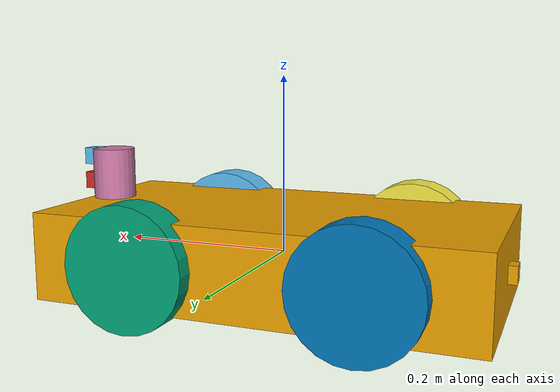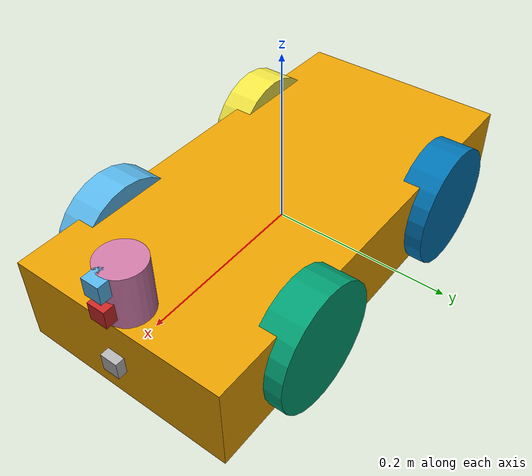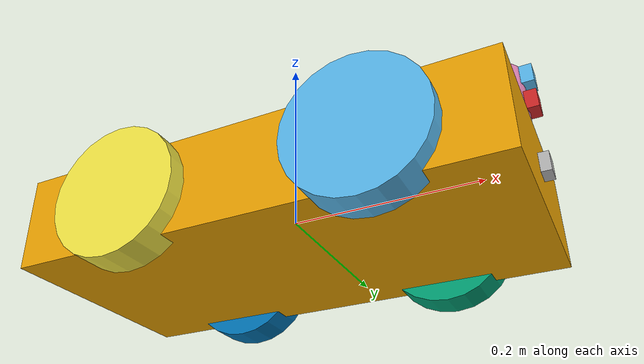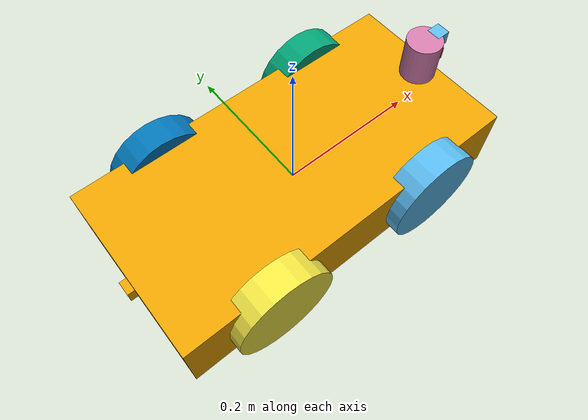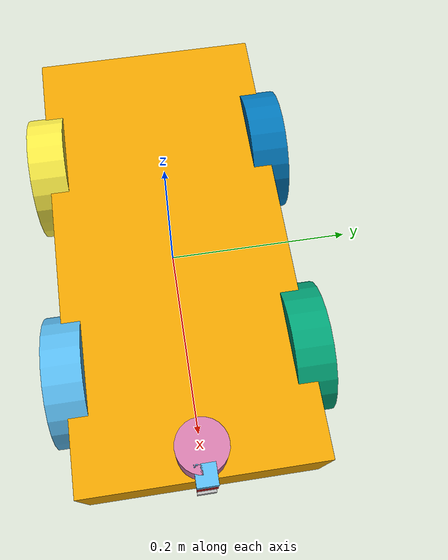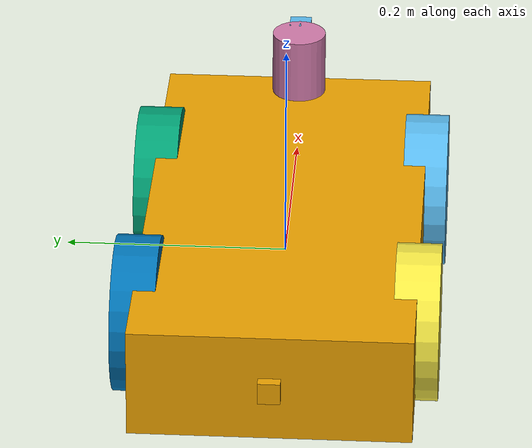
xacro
<?xml version="1.0"?>
<robot name="myrobot" xmlns:xacro="http://ros.org/wiki/xacro">
  <xacro:include filename="/home/tkakusa/catkin_ws/src/rover_research/urdfs/robot.xacro" />

  <!-- Robot base -->
  <link name="base_link">
    <visual>
      <geometry>
        <box size="${base_length} ${base_width} ${base_height}"/>
      </geometry>
    </visual>
    <xacro:default_inertial mass="40"/>
    <collision>
      <geometry>
        <box size="${base_length} 0.25 0.1"/>
      </geometry>
    </collision>
  </link>

  <!-- Four wheels -->
  <xacro:default_wheel fb="front" lr="left"/>
  <xacro:default_wheel fb="front" lr="right"/>
  <xacro:default_wheel fb="back" lr="left"/>
  <xacro:default_wheel fb="back" lr="right"/>

  <!-- Joints for the four wheels -->
  <joint name="base_to_front_right_wheel" type="continuous">
    <parent link="base_link"/>
    <child link="wheel_front_right"/>
    <origin xyz="0.125 0.125 0"/>
    <axis xyz="0 1 0"/>
  </joint>

  <joint name="base_to_front_left_wheel" type="continuous">
    <parent link="base_link"/>
    <child link="wheel_front_left"/>
    <origin xyz="0.125 -0.125 0"/>
    <axis xyz="0 1 0"/>
  </joint>

  <joint name="base_to_back_right_wheel" type="continuous">
    <parent link="base_link"/>
    <child link="wheel_back_right"/>
    <origin xyz="-0.125 0.125 0"/>
    <axis xyz="0 1 0"/>
  </joint>

  <joint name="base_to_back_left_wheel" type="continuous">
    <parent link="base_link"/>
    <child link="wheel_back_left"/>
    <origin xyz="-0.125 -0.125 0"/>
    <axis xyz="0 1 0"/>
  </joint>

  <!-- Skid steering controller -->
  <xacro:skid_steering />

  <!-- Camera Joint -->
  <joint name="camera_joint" type="fixed">
    <axis xyz="0 1 0" />
    <origin xyz="${pan_tilt_diam/2} 0 0.02" rpy="0 0 0"/>
    <parent link="pan_tilt_link"/>
    <child link="camera_link"/>
  </joint>

  <!-- Camera -->
  <link name="camera_link">
    <collision>
      <origin xyz="0 0 0" rpy="0 0 0"/>
      <geometry>
    <box size="0.02 0.02 0.02"/>
      </geometry>
    </collision>

    <visual>
      <origin xyz="0 0 0" rpy="0 0 0"/>
      <geometry>
    <box size="0.02 0.02 0.02"/>
      </geometry>
      <material name="red"/>
    </visual>

    <inertial>
      <mass value="1e-5" />
      <origin xyz="0 0 0" rpy="0 0 0"/>
      <inertia ixx="1e-6" ixy="0" ixz="0" iyy="1e-6" iyz="0" izz="1e-6" />
    </inertial>
  </link>

  <!-- camera module-->
  <gazebo reference="camera_link">
    <sensor type="camera" name="camera1">
      <update_rate>0.0</update_rate>
      <camera name="head">
        <horizontal_fov>1.3962634</horizontal_fov>
        <image>
          <width>800</width>
          <height>800</height>
          <format>R8G8B8</format>
        </image>
        <clip>
          <near>0.02</near>
          <far>300</far>
        </clip>
        <noise>
          <type>gaussian</type>
          <!-- Noise is sampled independently per pixel on each frame.
               That pixel's noise value is added to each of its color
               channels, which at that point lie in the range [0,1]. -->
          <mean>0.0</mean>
          <stddev>0.007</stddev>
        </noise>
      </camera>
      <plugin name="camera_controller" filename="libgazebo_ros_camera.so">
        <alwaysOn>true</alwaysOn>
        <updateRate>0.0</updateRate>
        <cameraName>camera1</cameraName>
        <imageTopicName>image_raw</imageTopicName>
        <cameraInfoTopicName>camera_info</cameraInfoTopicName>
        <frameName>camera_link</frameName>
        <hackBaseline>0.07</hackBaseline>
        <distortionK1>0.0</distortionK1>
        <distortionK2>0.0</distortionK2>
        <distortionK3>0.0</distortionK3>
        <distortionT1>0.0</distortionT1>
        <distortionT2>0.0</distortionT2>
      </plugin>
    </sensor>
  </gazebo>

  <!-- Pan tilt controller -->
  <gazebo>
    <plugin name="gazebo_ros_control" filename="libgazebo_ros_control.so">
      <robotNamespace>/robot</robotNamespace>
    </plugin>
  </gazebo>

  <!-- Pan tilt link -->
  <link name="pan_tilt_link">
    <visual>
      <geometry>
        <cylinder length="${pan_tilt_len}" radius="${pan_tilt_diam/2}"/>
      </geometry>
      <origin xyz="0 0 ${pan_tilt_len/2}"/>
    </visual>
    <xacro:default_inertial mass="1"/>
    <collision>
      <geometry>
        <cylinder length="${pan_tilt_len}" radius="${pan_tilt_diam/2}"/>
      </geometry>
      <origin xyz="0 0 ${pan_tilt_len/2}"/>
    </collision>
  </link>

  <!-- Pan tilt joint -->
  <joint name="base_to_pan_tilt" type="revolute">
    <parent link="base_link"/>
    <child link="pan_tilt_link"/>
    <origin xyz="${base_length/2-pan_tilt_diam/2} 0 ${base_height/2}"/>
    <axis xyz="0 0 1"/>
    <limit effort="1000.0" lower="${-pi/2}" upper="${pi/2}" velocity="0.5"/>
  </joint>

  <!-- URDF Transmission interface -->
  <xacro:trans joint="base_to_pan_tilt" />
  <xacro:trans joint="base_to_front_right_wheel" />
  <xacro:trans joint="base_to_front_left_wheel" />
  <xacro:trans joint="base_to_back_right_wheel" />
  <xacro:trans joint="base_to_back_left_wheel" />

  <xacro:sonar location="front" parent="base_link" xval="${base_length/2}" zval="0" min_angle="-0.261799" max_angle="0.261799" />
  <xacro:sonar location="back" parent="base_link" xval="-${base_length/2}" zval="0" min_angle="${pi-0.261799}" max_angle="${pi+0.261799}" />
  <xacro:sonar location="pan" parent="pan_tilt_link" xval="${pan_tilt_diam/2}" zval="${pan_tilt_len-sonar_dim/2}" min_angle="-0.261799" max_angle="0.261799" />

  <!-- IMU Link -->
  <link name="imu_link">
    <xacro:default_inertial mass="1"/>
  </link>

  <!-- Joint for the IMU -->
  <joint name="imu_joint" type="fixed">
    <parent link="base_link"/>
    <child link="imu_link"/>
  </joint>

  <!-- IMU controller -->
  <xacro:imu />
</robot>

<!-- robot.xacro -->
<robot xmlns:xacro="http://ros.org/wiki/xacro">
  <xacro:property name="base_length" value="0.5" />
  <xacro:property name="base_width" value="0.25" />
  <xacro:property name="base_height" value="0.1" />
  <xacro:property name="pan_tilt_diam" value="0.05" />
  <xacro:property name="pan_tilt_len" value="0.06" />
  <xacro:property name="wheeldiam" value="0.14" />
  <xacro:property name="wheelsep" value="0.25" />
  <xacro:property name="sonar_dim" value="0.02" />

  <xacro:macro name="default_inertial" params="mass">
    <inertial>
      <mass value="${mass}" />
      <inertia ixx="1.0" ixy="0.0" ixz="0.0" iyy="1.0" iyz="0.0" izz="1.0" />
    </inertial>
  </xacro:macro>

  <xacro:macro name="default_wheel" params="fb lr">
    <link name="wheel_${fb}_${lr}">
      <visual>
        <geometry>
          <cylinder length="0.04" radius="${wheeldiam/2}"/>
        </geometry>
        <origin rpy="1.57075 0 0"/>
      </visual>
      <xacro:default_inertial mass="2"/>
      <collision>
        <geometry>
          <cylinder length="0.04" radius=".07"/>
        </geometry>
        <origin rpy="1.57075 0 0"/>
      </collision>
    </link>
  </xacro:macro>

  <xacro:macro name="skid_steering" >
    <gazebo>
      <plugin name="skid_steer_drive_controller" filename="libgazebo_ros_skid_steer_drive.so">
        <updateRate>0.0</updateRate>
        <robotNamespace>/</robotNamespace>
        <leftFrontJoint>base_to_front_left_wheel</leftFrontJoint>
        <rightFrontJoint>base_to_front_right_wheel</rightFrontJoint>
        <leftRearJoint>base_to_back_left_wheel</leftRearJoint>
        <rightRearJoint>base_to_back_right_wheel</rightRearJoint>
        <wheelSeparation>${wheelsep}</wheelSeparation>
        <wheelDiameter>${wheeldiam}</wheelDiameter>
        <robotBaseFrame>base_link</robotBaseFrame>
        <torque>10</torque>
        <topicName>cmd_vel</topicName>
        <broadcastTF>false</broadcastTF>
      </plugin>
    </gazebo>
  </xacro:macro>

  <xacro:macro name="imu" >
    <gazebo>
      <plugin name="imu_plugin" filename="libgazebo_ros_imu.so">
        <alwaysOn>true</alwaysOn>
        <bodyName>imu_link</bodyName>
        <topicName>imu</topicName>
        <serviceName>imu_service</serviceName>
        <gaussianNoise>0.0</gaussianNoise>
        <updateRate>0.0</updateRate>
      </plugin>
    </gazebo>
  </xacro:macro>

  <xacro:macro name="trans" params="joint">
    <transmission name="${joint}_simple_trans">
      <type>transmission_interface/SimpleTransmission</type>
      <joint name="${joint}">
        <hardwareInterface>hardware_interface/EffortJointInterface</hardwareInterface>
      </joint>
      <actuator name="motor1">
        <mechanicalReduction>50</mechanicalReduction>
        <hardwareInterface>hardware_interface/EffortJointInterface</hardwareInterface>
      </actuator>
    </transmission>
  </xacro:macro>

  <xacro:macro name="sonar" params="location parent xval zval min_angle max_angle">
    <link name="${location}_ultrasonic_link">
      <collision>
        <origin xyz="0 0 0" rpy="0 0 0"/>
        <geometry>
          <box size="${sonar_dim} ${sonar_dim} ${sonar_dim}" />
        </geometry>
      </collision>
      <visual>
        <origin xyz="0 0 0" rpy="0 0 0"/>
        <geometry>
          <box size="${sonar_dim} ${sonar_dim} ${sonar_dim}" />
        </geometry>
      </visual>
      <xacro:default_inertial mass=".001"/>
    </link>

    <joint name="${location}_ultrasonic_joint" type="fixed">
      <parent link="${parent}"/>
      <child link="${location}_ultrasonic_link" />
      <origin xyz="${xval} 0 ${zval}"/>
      <axis xyz="0 1 0"/>
    </joint>

    <gazebo reference="${location}_ultrasonic_link">
      <sensor type="ray" name="${location}_ultrasonic">
        <always_on>true</always_on>
        <update_rate>0.0</update_rate>
        <pose>0 0 0 0 0 0</pose>
        <visualize>true</visualize>
        <ray>
          <scan>
            <horizontal>
              <samples>720</samples>
              <resolution>1</resolution>
              <min_angle>${min_angle}</min_angle>
              <max_angle>${max_angle}</max_angle>
            </horizontal>
          </scan>
          <range>
            <min>0.1</min>
            <max>4</max>
            <resolution>0.01</resolution>
          </range>
        </ray>

        <plugin name="gazebo_${location}_ultrasonic_controller" filename="libhector_gazebo_ros_sonar.so">
          <gaussianNoise>0.005</gaussianNoise>
          <topicName>${location}_ultrasonic</topicName>
          <frameId>${location}_ultrasonic_link</frameId>
        </plugin>
      </sensor>
    </gazebo>
  </xacro:macro>
</robot>
